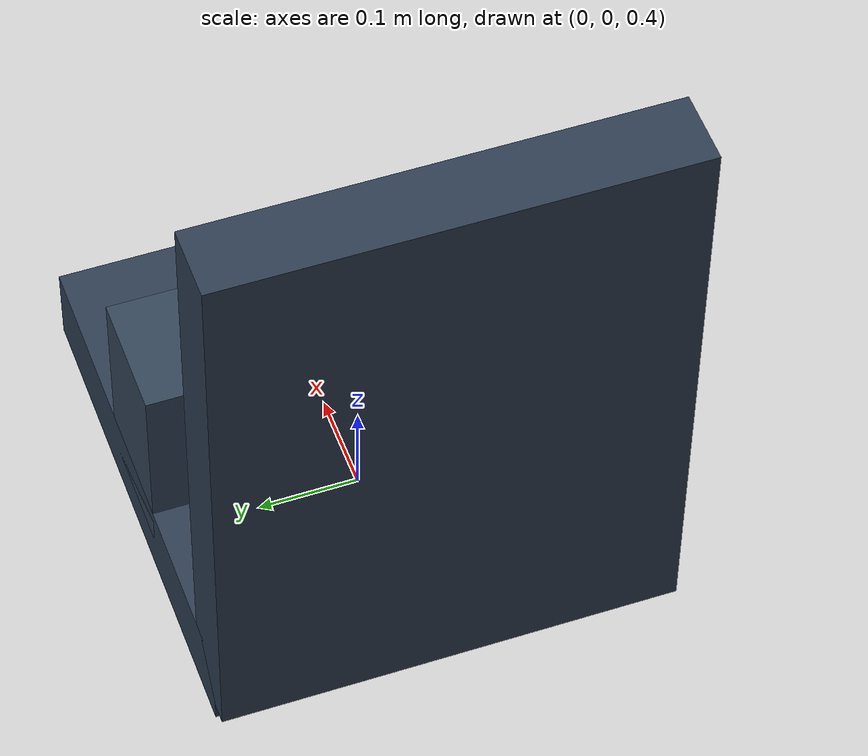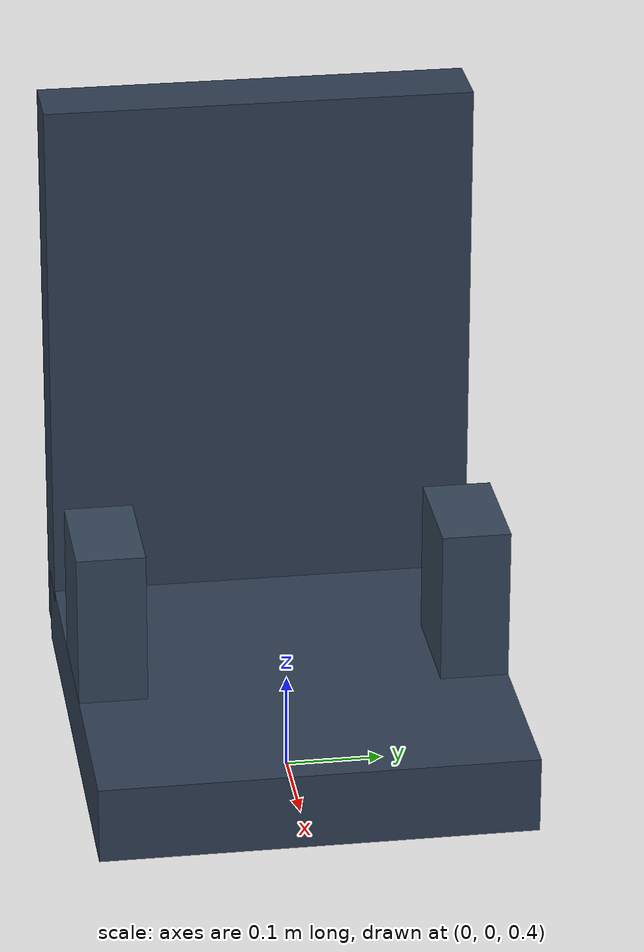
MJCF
<?xml version='1.0' encoding='utf-8'?>
<mujoco model="seat">
  <compiler angle="radian" />
  <option timestep="0.002" gravity="0.0 0.0 -9.81" />
  <default>
    <geom friction="0.8 0.01 0.0001" />
  </default>
  <worldbody>
    <light name="seat_light" pos="-0.5 -0.5 2" />
    <body name="adjustable_seat" pos="0.0 0.0 0.48">
      <geom name="seat_cushion" type="box" size="0.24 0.22 0.04" friction="0.9 0.01 0.0001" rgba="0.18 0.24 0.32 1" />
      <geom name="seat_back" type="box" pos="-0.225 0.0 0.28" size="0.035 0.22 0.3" friction="0.9 0.01 0.0001" rgba="0.18 0.24 0.32 1" />
      <geom name="left_pelvis_support" type="box" pos="0.0 0.185 0.1" size="0.06 0.035 0.1" friction="0.9 0.01 0.0001" rgba="0.20 0.27 0.35 1" />
      <geom name="right_pelvis_support" type="box" pos="0.0 -0.185 0.1" size="0.06 0.035 0.1" friction="0.9 0.01 0.0001" rgba="0.20 0.27 0.35 1" />
    </body>
  </worldbody>
</mujoco>
